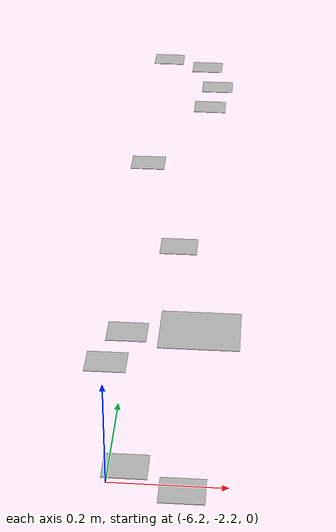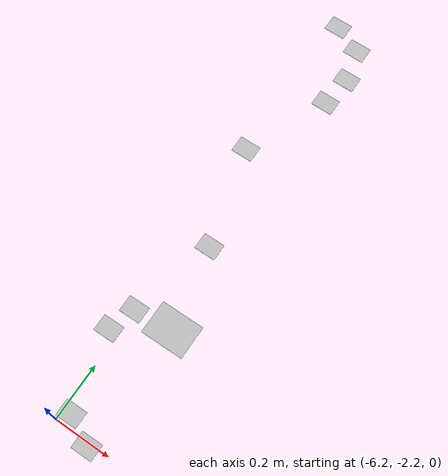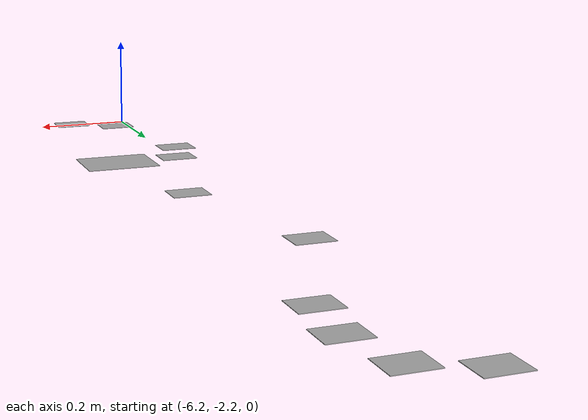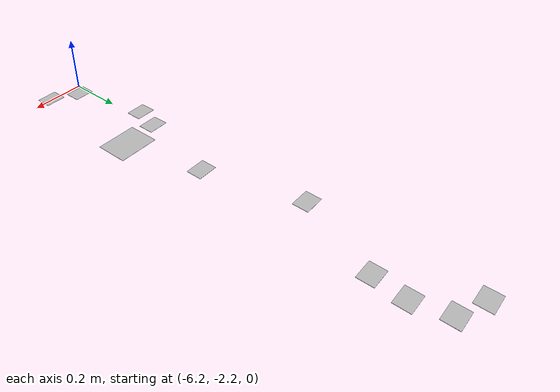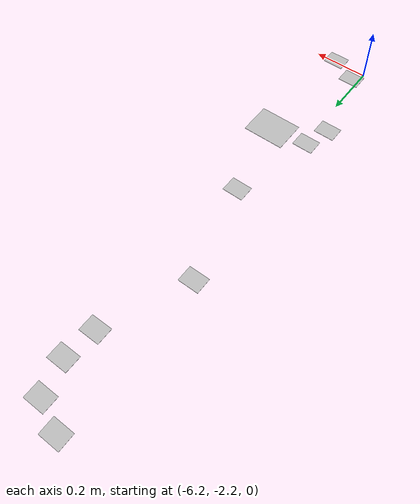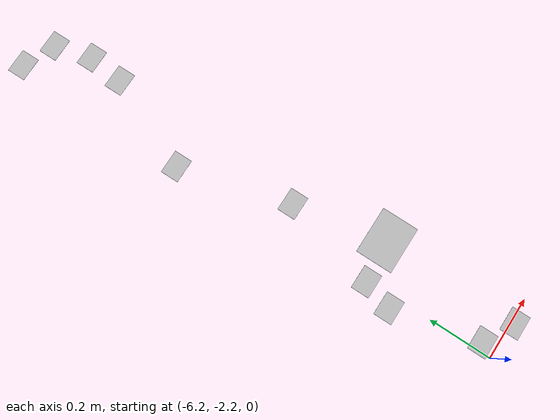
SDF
<sdf version="1.4">
 <world name="default">
  <model name="atags4_6">
   <static>1</static>
   <link name="link">
    <collision name="collision"><geometry><box><size>0.15275 0.11825 0.001</size></box></geometry></collision>
    <visual name="visual">
     <geometry><box><size>0.15275 0.11825 0.001</size></box></geometry>
     <material>
      <script>
       <uri>model://atags4_6/materials/scripts</uri>
       <uri>model://atags4_6/materials/textures</uri>
       <name>atags4_6/Diffuse</name>
      </script>
     </material>
    </visual>
    <velocity_decay><linear>0</linear><angular>0</angular></velocity_decay>
   </link>
   <pose>-6.06972 -1.77573 0 0 -0 0</pose>
  </model>
  <model name="at198">
   <static>1</static>
   <link name="link">
    <collision name="collision"><geometry><box><size>0.0763 0.05912 0.001</size></box></geometry></collision>
    <visual name="visual">
     <geometry><box><size>0.0763 0.05912 0.001</size></box></geometry>
     <material>
      <script>
       <uri>model://at198/materials/scripts</uri>
       <uri>model://at198/materials/textures</uri>
       <name>at198/Diffuse</name>
      </script>
     </material>
    </visual>
    <velocity_decay><linear>0</linear><angular>0</angular></velocity_decay>
   </link>
   <pose>-6.23567 -1.88338 0 0 -0 0</pose>
  </model>
  <model name="at199">
   <static>1</static>
   <link name="link">
    <collision name="collision"><geometry><box><size>0.0763 0.05912 0.001</size></box></geometry></collision>
    <visual name="visual">
     <geometry><box><size>0.0763 0.05912 0.001</size></box></geometry>
     <material>
      <script>
       <uri>model://at199/materials/scripts</uri>
       <uri>model://at199/materials/textures</uri>
       <name>at199/Diffuse</name>
      </script>
     </material>
    </visual>
    <velocity_decay><linear>0</linear><angular>0</angular></velocity_decay>
   </link>
   <pose>-6.08183 -0.717059 0 0 -0 0</pose>
  </model>
  <model name="at202">
   <static>1</static>
   <link name="link">
    <collision name="collision"><geometry><box><size>0.0763 0.05912 0.001</size></box></geometry></collision>
    <visual name="visual">
     <geometry><box><size>0.0763 0.05912 0.001</size></box></geometry>
     <material>
      <script>
       <uri>model://at202/materials/scripts</uri>
       <uri>model://at202/materials/textures</uri>
       <name>at202/Diffuse</name>
      </script>
     </material>
    </visual>
    <velocity_decay><linear>0</linear><angular>0</angular></velocity_decay>
   </link>
   <pose>-6.17181 -2.15946 0 0 -0 0</pose>
  </model>
  <model name="at214">
   <static>1</static>
   <link name="link">
    <collision name="collision"><geometry><box><size>0.0763 0.05912 0.001</size></box></geometry></collision>
    <visual name="visual">
     <geometry><box><size>0.0763 0.05912 0.001</size></box></geometry>
     <material>
      <script>
       <uri>model://at214/materials/scripts</uri>
       <uri>model://at214/materials/textures</uri>
       <name>at214/Diffuse</name>
      </script>
     </material>
    </visual>
    <velocity_decay><linear>0</linear><angular>0</angular></velocity_decay>
   </link>
   <pose>-6.12921 -1.48399 0 0 -0 0</pose>
  </model>
  <model name="at216">
   <static>1</static>
   <link name="link">
    <collision name="collision"><geometry><box><size>0.0763 0.05912 0.001</size></box></geometry></collision>
    <visual name="visual">
     <geometry><box><size>0.0763 0.05912 0.001</size></box></geometry>
     <material>
      <script>
       <uri>model://at216/materials/scripts</uri>
       <uri>model://at216/materials/textures</uri>
       <name>at216/Diffuse</name>
      </script>
     </material>
    </visual>
    <velocity_decay><linear>0</linear><angular>0</angular></velocity_decay>
   </link>
   <pose>-6.07482 -2.21105 0 0 -0 0</pose>
  </model>
  <model name="at223">
   <static>1</static>
   <link name="link">
    <collision name="collision"><geometry><box><size>0.0763 0.05912 0.001</size></box></geometry></collision>
    <visual name="visual">
     <geometry><box><size>0.0763 0.05912 0.001</size></box></geometry>
     <material>
      <script>
       <uri>model://at223/materials/scripts</uri>
       <uri>model://at223/materials/textures</uri>
       <name>at223/Diffuse</name>
      </script>
     </material>
    </visual>
    <velocity_decay><linear>0</linear><angular>0</angular></velocity_decay>
   </link>
   <pose>-6.22402 -1.1296 0 0 -0 0</pose>
  </model>
  <model name="at231">
   <static>1</static>
   <link name="link">
    <collision name="collision"><geometry><box><size>0.0763 0.05912 0.001</size></box></geometry></collision>
    <visual name="visual">
     <geometry><box><size>0.0763 0.05912 0.001</size></box></geometry>
     <material>
      <script>
       <uri>model://at231/materials/scripts</uri>
       <uri>model://at231/materials/textures</uri>
       <name>at231/Diffuse</name>
      </script>
     </material>
    </visual>
    <velocity_decay><linear>0</linear><angular>0</angular></velocity_decay>
   </link>
   <pose>-6.20624 -1.78861 0 0 -0 0</pose>
  </model>
  <model name="at232">
   <static>1</static>
   <link name="link">
    <collision name="collision"><geometry><box><size>0.0763 0.05912 0.001</size></box></geometry></collision>
    <visual name="visual">
     <geometry><box><size>0.0763 0.05912 0.001</size></box></geometry>
     <material>
      <script>
       <uri>model://at232/materials/scripts</uri>
       <uri>model://at232/materials/textures</uri>
       <name>at232/Diffuse</name>
      </script>
     </material>
    </visual>
    <velocity_decay><linear>0</linear><angular>0</angular></velocity_decay>
   </link>
   <pose>-6.21668 -0.5546 0 0 -0 0</pose>
  </model>
  <model name="at236">
   <static>1</static>
   <link name="link">
    <collision name="collision"><geometry><box><size>0.0763 0.05912 0.001</size></box></geometry></collision>
    <visual name="visual">
     <geometry><box><size>0.0763 0.05912 0.001</size></box></geometry>
     <material>
      <script>
       <uri>model://at236/materials/scripts</uri>
       <uri>model://at236/materials/textures</uri>
       <name>at236/Diffuse</name>
      </script>
     </material>
    </visual>
    <velocity_decay><linear>0</linear><angular>0</angular></velocity_decay>
   </link>
   <pose>-6.0958 -0.832065 0 0 -0 0</pose>
  </model>
  <model name="at254">
   <static>1</static>
   <link name="link">
    <collision name="collision"><geometry><box><size>0.0763 0.05912 0.001</size></box></geometry></collision>
    <visual name="visual">
     <geometry><box><size>0.0763 0.05912 0.001</size></box></geometry>
     <material>
      <script>
       <uri>model://at254/materials/scripts</uri>
       <uri>model://at254/materials/textures</uri>
       <name>at254/Diffuse</name>
      </script>
     </material>
    </visual>
    <velocity_decay><linear>0</linear><angular>0</angular></velocity_decay>
   </link>
   <pose>-6.11322 -0.598819 0 0 -0 0</pose>
  </model>
 </world>
</sdf>
